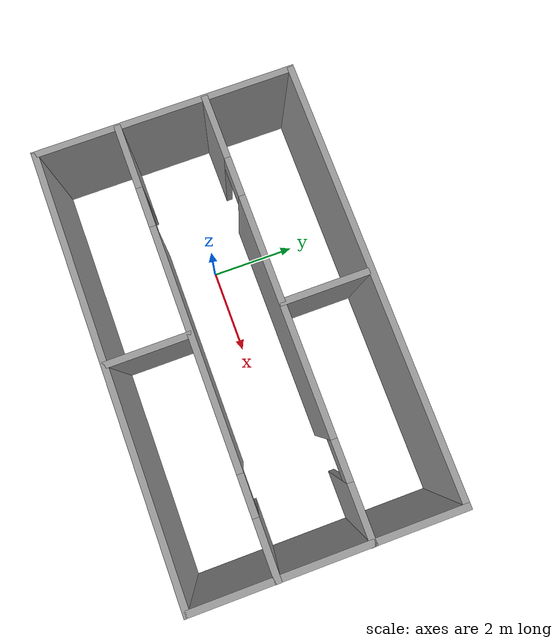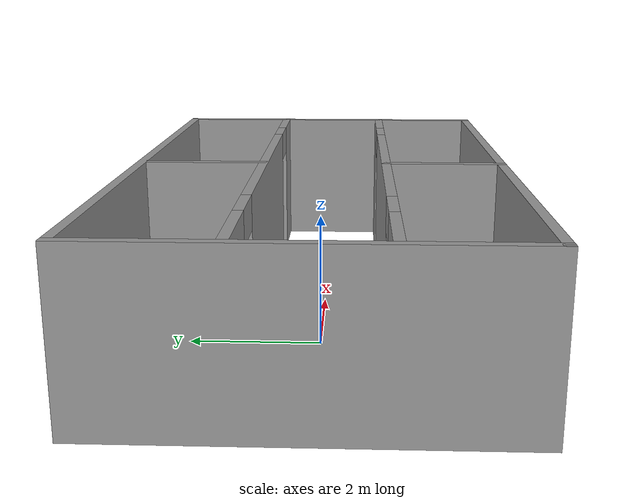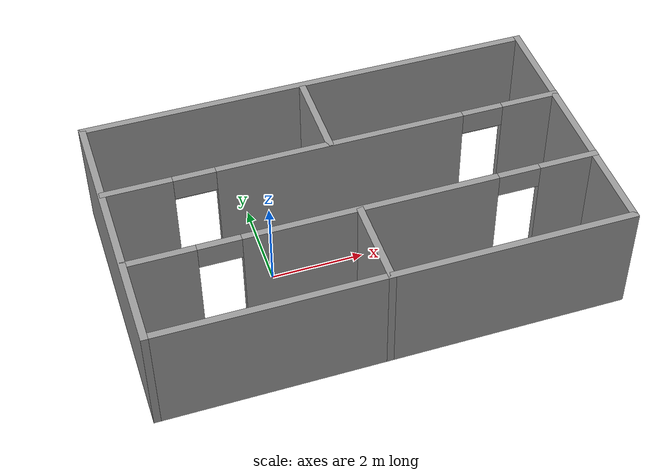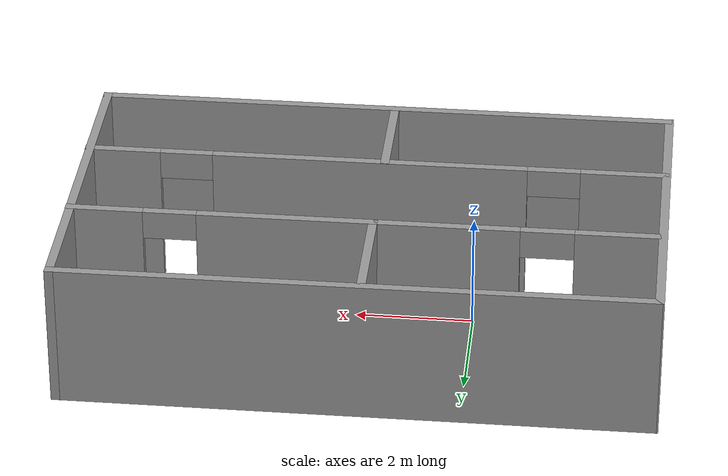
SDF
<?xml version='1.0'?>
<sdf version='1.6'>
  <model name='Map1'>
    <pose frame=''>1.75696 0.068898 0 0 -0 0</pose>
    <link name='Wall_13'>
      <pose frame=''>0.015929 0.929443 0 0 -0 0</pose>
      <visual name='Wall_13_Visual_0'>
        <pose frame=''>-4.2505 0 1.25 0 -0 0</pose>
        <geometry>
          <box>
            <size>1.49901 0.15 2.5</size>
          </box>
        </geometry>
        <material>
          <script>
            <uri>file://media/materials/scripts/gazebo.material</uri>
            <name>Gazebo/Grey</name>
          </script>
          <ambient>1 1 1 1</ambient>
        </material>
      </visual>
      <collision name='Wall_13_Collision_0'>
        <geometry>
          <box>
            <size>1.49901 0.15 2.5</size>
          </box>
        </geometry>
        <pose frame=''>-4.2505 0 1.25 0 -0 0</pose>
      </collision>
      <visual name='Wall_13_Visual_1'>
        <pose frame=''>0.097219 0 1.25 0 -0 0</pose>
        <geometry>
          <box>
            <size>5.39642 0.15 2.5</size>
          </box>
        </geometry>
        <material>
          <script>
            <uri>file://media/materials/scripts/gazebo.material</uri>
            <name>Gazebo/Grey</name>
          </script>
          <ambient>1 1 1 1</ambient>
        </material>
      </visual>
      <collision name='Wall_13_Collision_1'>
        <geometry>
          <box>
            <size>5.39642 0.15 2.5</size>
          </box>
        </geometry>
        <pose frame=''>0.097219 0 1.25 0 -0 0</pose>
      </collision>
      <visual name='Wall_13_Visual_2'>
        <pose frame=''>4.34771 0 1.25 0 -0 0</pose>
        <geometry>
          <box>
            <size>1.30457 0.15 2.5</size>
          </box>
        </geometry>
        <material>
          <script>
            <uri>file://media/materials/scripts/gazebo.material</uri>
            <name>Gazebo/Grey</name>
          </script>
          <ambient>1 1 1 1</ambient>
        </material>
      </visual>
      <collision name='Wall_13_Collision_2'>
        <geometry>
          <box>
            <size>1.30457 0.15 2.5</size>
          </box>
        </geometry>
        <pose frame=''>4.34771 0 1.25 0 -0 0</pose>
      </collision>
      <visual name='Wall_13_Visual_3'>
        <pose frame=''>-3.05099 0 2.25 0 -0 0</pose>
        <geometry>
          <box>
            <size>0.9 0.15 0.5</size>
          </box>
        </geometry>
        <material>
          <script>
            <uri>file://media/materials/scripts/gazebo.material</uri>
            <name>Gazebo/Grey</name>
          </script>
          <ambient>1 1 1 1</ambient>
        </material>
      </visual>
      <collision name='Wall_13_Collision_3'>
        <geometry>
          <box>
            <size>0.9 0.15 0.5</size>
          </box>
        </geometry>
        <pose frame=''>-3.05099 0 2.25 0 -0 0</pose>
      </collision>
      <visual name='Wall_13_Visual_4'>
        <pose frame=''>3.24543 0 2.25 0 -0 0</pose>
        <geometry>
          <box>
            <size>0.9 0.15 0.5</size>
          </box>
        </geometry>
        <material>
          <script>
            <uri>file://media/materials/scripts/gazebo.material</uri>
            <name>Gazebo/Grey</name>
          </script>
          <ambient>1 1 1 1</ambient>
        </material>
      </visual>
      <collision name='Wall_13_Collision_4'>
        <geometry>
          <box>
            <size>0.9 0.15 0.5</size>
          </box>
        </geometry>
        <pose frame=''>3.24543 0 2.25 0 -0 0</pose>
      </collision>
    </link>
    <link name='Wall_15'>
      <pose frame=''>0.015929 -1.06306 0 0 -0 0</pose>
      <visual name='Wall_15_Visual_0'>
        <pose frame=''>-4.2505 0 1.25 0 -0 0</pose>
        <geometry>
          <box>
            <size>1.49901 0.15 2.5</size>
          </box>
        </geometry>
        <material>
          <script>
            <uri>file://media/materials/scripts/gazebo.material</uri>
            <name>Gazebo/Grey</name>
          </script>
          <ambient>1 1 1 1</ambient>
        </material>
      </visual>
      <collision name='Wall_15_Collision_0'>
        <geometry>
          <box>
            <size>1.49901 0.15 2.5</size>
          </box>
        </geometry>
        <pose frame=''>-4.2505 0 1.25 0 -0 0</pose>
      </collision>
      <visual name='Wall_15_Visual_1'>
        <pose frame=''>0.097219 0 1.25 0 -0 0</pose>
        <geometry>
          <box>
            <size>5.39642 0.15 2.5</size>
          </box>
        </geometry>
        <material>
          <script>
            <uri>file://media/materials/scripts/gazebo.material</uri>
            <name>Gazebo/Grey</name>
          </script>
          <ambient>1 1 1 1</ambient>
        </material>
      </visual>
      <collision name='Wall_15_Collision_1'>
        <geometry>
          <box>
            <size>5.39642 0.15 2.5</size>
          </box>
        </geometry>
        <pose frame=''>0.097219 0 1.25 0 -0 0</pose>
      </collision>
      <visual name='Wall_15_Visual_2'>
        <pose frame=''>4.34771 0 1.25 0 -0 0</pose>
        <geometry>
          <box>
            <size>1.30457 0.15 2.5</size>
          </box>
        </geometry>
        <material>
          <script>
            <uri>file://media/materials/scripts/gazebo.material</uri>
            <name>Gazebo/Grey</name>
          </script>
          <ambient>1 1 1 1</ambient>
        </material>
      </visual>
      <collision name='Wall_15_Collision_2'>
        <geometry>
          <box>
            <size>1.30457 0.15 2.5</size>
          </box>
        </geometry>
        <pose frame=''>4.34771 0 1.25 0 -0 0</pose>
      </collision>
      <visual name='Wall_15_Visual_3'>
        <pose frame=''>-3.05099 0 2.25 0 -0 0</pose>
        <geometry>
          <box>
            <size>0.9 0.15 0.5</size>
          </box>
        </geometry>
        <material>
          <script>
            <uri>file://media/materials/scripts/gazebo.material</uri>
            <name>Gazebo/Grey</name>
          </script>
          <ambient>1 1 1 1</ambient>
        </material>
      </visual>
      <collision name='Wall_15_Collision_3'>
        <geometry>
          <box>
            <size>0.9 0.15 0.5</size>
          </box>
        </geometry>
        <pose frame=''>-3.05099 0 2.25 0 -0 0</pose>
      </collision>
      <visual name='Wall_15_Visual_4'>
        <pose frame=''>3.24543 0 2.25 0 -0 0</pose>
        <geometry>
          <box>
            <size>0.9 0.15 0.5</size>
          </box>
        </geometry>
        <material>
          <script>
            <uri>file://media/materials/scripts/gazebo.material</uri>
            <name>Gazebo/Grey</name>
          </script>
          <ambient>1 1 1 1</ambient>
        </material>
      </visual>
      <collision name='Wall_15_Collision_4'>
        <geometry>
          <box>
            <size>0.9 0.15 0.5</size>
          </box>
        </geometry>
        <pose frame=''>3.24543 0 2.25 0 -0 0</pose>
      </collision>
    </link>
    <link name='Wall_17'>
      <collision name='Wall_17_Collision'>
        <geometry>
          <box>
            <size>2 0.15 2.5</size>
          </box>
        </geometry>
        <pose frame=''>0 0 1.25 0 -0 0</pose>
      </collision>
      <visual name='Wall_17_Visual'>
        <pose frame=''>0 0 1.25 0 -0 0</pose>
        <geometry>
          <box>
            <size>2 0.15 2.5</size>
          </box>
        </geometry>
        <material>
          <script>
            <uri>file://media/materials/scripts/gazebo.material</uri>
            <name>Gazebo/Grey</name>
          </script>
          <ambient>1 1 1 1</ambient>
        </material>
      </visual>
      <pose frame=''>-0.140008 1.8728 0 0 -0 1.5708</pose>
    </link>
    <link name='Wall_19'>
      <collision name='Wall_19_Collision'>
        <geometry>
          <box>
            <size>2 0.15 2.5</size>
          </box>
        </geometry>
        <pose frame=''>0 0 1.25 0 -0 0</pose>
      </collision>
      <visual name='Wall_19_Visual'>
        <pose frame=''>0 0 1.25 0 -0 0</pose>
        <geometry>
          <box>
            <size>2 0.15 2.5</size>
          </box>
        </geometry>
        <material>
          <script>
            <uri>file://media/materials/scripts/gazebo.material</uri>
            <name>Gazebo/Grey</name>
          </script>
          <ambient>1 1 1 1</ambient>
        </material>
      </visual>
      <pose frame=''>-0.150555 -2.00031 0 0 0 -1.5708</pose>
    </link>
    <link name='Wall_2'>
      <collision name='Wall_2_Collision'>
        <geometry>
          <box>
            <size>6 0.15 2.5</size>
          </box>
        </geometry>
        <pose frame=''>0 0 1.25 0 -0 0</pose>
      </collision>
      <visual name='Wall_2_Visual'>
        <pose frame=''>0 0 1.25 0 -0 0</pose>
        <geometry>
          <box>
            <size>6 0.15 2.5</size>
          </box>
        </geometry>
        <material>
          <script>
            <uri>file://media/materials/scripts/gazebo.material</uri>
            <name>Gazebo/Grey</name>
          </script>
          <ambient>1 1 1 1</ambient>
        </material>
      </visual>
      <pose frame=''>-4.94093 0.000309 0 0 0 -1.5708</pose>
    </link>
    <link name='Wall_6'>
      <collision name='Wall_6_Collision'>
        <geometry>
          <box>
            <size>10 0.15 2.5</size>
          </box>
        </geometry>
        <pose frame=''>0 0 1.25 0 -0 0</pose>
      </collision>
      <visual name='Wall_6_Visual'>
        <pose frame=''>0 0 1.25 0 -0 0</pose>
        <geometry>
          <box>
            <size>10 0.15 2.5</size>
          </box>
        </geometry>
        <material>
          <script>
            <uri>file://media/materials/scripts/gazebo.material</uri>
            <name>Gazebo/Grey</name>
          </script>
          <ambient>1 1 1 1</ambient>
        </material>
      </visual>
      <pose frame=''>0.010671 2.92531 0 0 -0 3.14159</pose>
    </link>
    <link name='Wall_8'>
      <collision name='Wall_8_Collision'>
        <geometry>
          <box>
            <size>6 0.15 2.5</size>
          </box>
        </geometry>
        <pose frame=''>0 0 1.25 0 -0 0</pose>
      </collision>
      <visual name='Wall_8_Visual'>
        <pose frame=''>0 0 1.25 0 -0 0</pose>
        <geometry>
          <box>
            <size>6 0.15 2.5</size>
          </box>
        </geometry>
        <material>
          <script>
            <uri>file://media/materials/scripts/gazebo.material</uri>
            <name>Gazebo/Grey</name>
          </script>
          <ambient>1 1 1 1</ambient>
        </material>
      </visual>
      <pose frame=''>4.93567 0.000309 0 0 0 -1.5708</pose>
    </link>
    <link name='Wall_9'>
      <collision name='Wall_9_Collision'>
        <geometry>
          <box>
            <size>10 0.15 2.5</size>
          </box>
        </geometry>
        <pose frame=''>0 0 1.25 0 -0 0</pose>
      </collision>
      <visual name='Wall_9_Visual'>
        <pose frame=''>0 0 1.25 0 -0 0</pose>
        <geometry>
          <box>
            <size>10 0.15 2.5</size>
          </box>
        </geometry>
        <material>
          <script>
            <uri>file://media/materials/scripts/gazebo.material</uri>
            <name>Gazebo/Grey</name>
          </script>
          <ambient>1 1 1 1</ambient>
        </material>
      </visual>
      <pose frame=''>0.010671 -2.92469 0 0 -0 3.14159</pose>
    </link>
    <static>1</static>
  </model>
</sdf>
